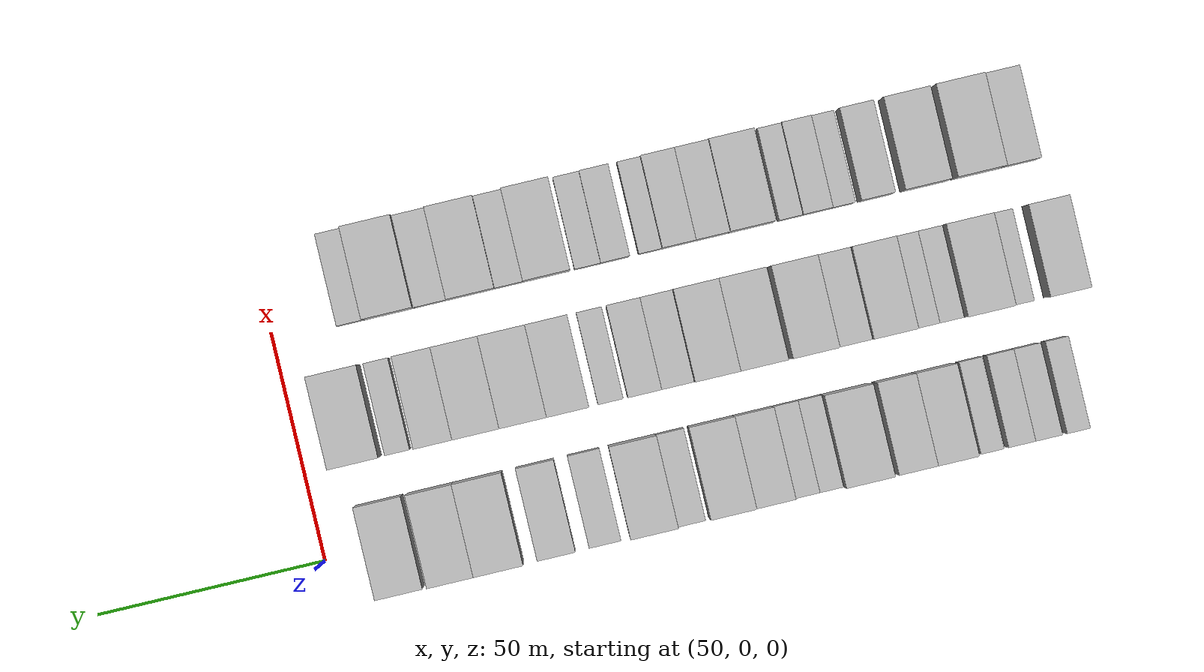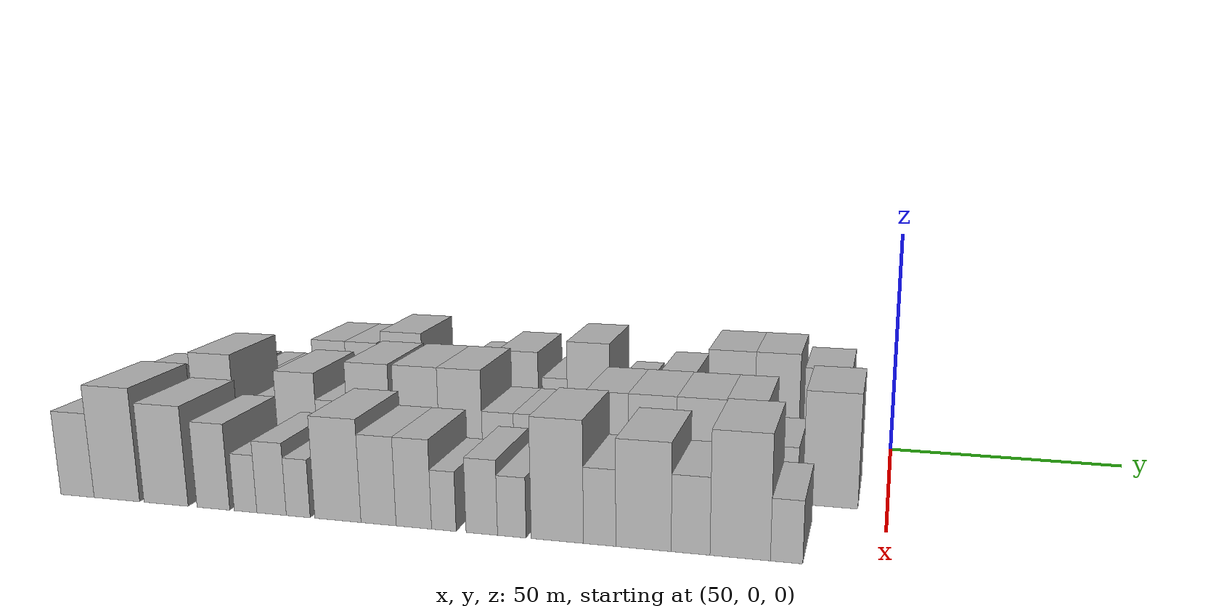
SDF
<sdf version="1.6">
 <world name="default">
  <model name="building_20">
   <static>1</static>
   <pose>50.0000 -161.9651 0 0.000000 0.000000 0.000000</pose>
   <link name="link">
    <pose>0 0 6.00 0 0 0</pose>
    <collision name="collision"><geometry><box><size>20.0000 5.0303 12.0000</size></box></geometry></collision>
    <visual name="visual">
     <cast_shadows>0</cast_shadows>
     <geometry><box><size>20.0000 5.0303 12.0000</size></box></geometry>
     <material>
      <script>
       <uri>model://HANNAS_wall/materials/scripts</uri>
       <uri>model://HANNAS_wall/materials/textures</uri>
       <name>vrc/HANNAS_wall</name>
      </script>
     </material>
    </visual>
   </link>
  </model>
  <model name="building_21">
   <static>1</static>
   <pose>50.0000 -155.5312 0 0.000000 0.000000 0.000000</pose>
   <link name="link">
    <pose>0 0 6.00 0 0 0</pose>
    <collision name="collision"><geometry><box><size>20.0000 5.8376 12.0000</size></box></geometry></collision>
    <visual name="visual">
     <cast_shadows>0</cast_shadows>
     <geometry><box><size>20.0000 5.8376 12.0000</size></box></geometry>
     <material>
      <script>
       <uri>model://HANNAS_wall/materials/scripts</uri>
       <uri>model://HANNAS_wall/materials/textures</uri>
       <name>vrc/HANNAS_wall</name>
      </script>
     </material>
    </visual>
   </link>
  </model>
  <model name="building_22">
   <static>1</static>
   <pose>50.0000 -149.6704 0 0.000000 0.000000 0.000000</pose>
   <link name="link">
    <pose>0 0 6.00 0 0 0</pose>
    <collision name="collision"><geometry><box><size>20.0000 5.8840 12.0000</size></box></geometry></collision>
    <visual name="visual">
     <cast_shadows>0</cast_shadows>
     <geometry><box><size>20.0000 5.8840 12.0000</size></box></geometry>
     <material>
      <script>
       <uri>model://HANNAS_wall/materials/scripts</uri>
       <uri>model://HANNAS_wall/materials/textures</uri>
       <name>vrc/HANNAS_wall</name>
      </script>
     </material>
    </visual>
   </link>
  </model>
  <model name="building_23">
   <static>1</static>
   <pose>50.0000 -143.2097 0 0.000000 0.000000 0.000000</pose>
   <link name="link">
    <pose>0 0 6.00 0 0 0</pose>
    <collision name="collision"><geometry><box><size>20.0000 5.0373 12.0000</size></box></geometry></collision>
    <visual name="visual">
     <cast_shadows>0</cast_shadows>
     <geometry><box><size>20.0000 5.0373 12.0000</size></box></geometry>
     <material>
      <script>
       <uri>model://HANNAS_wall/materials/scripts</uri>
       <uri>model://HANNAS_wall/materials/textures</uri>
       <name>vrc/HANNAS_wall</name>
      </script>
     </material>
    </visual>
   </link>
  </model>
  <model name="building_24">
   <static>1</static>
   <pose>50.0000 -135.2551 0 0.000000 0.000000 0.000000</pose>
   <link name="link">
    <pose>0 0 10.50 0 0 0</pose>
    <collision name="collision"><geometry><box><size>20.0000 8.8719 21.0000</size></box></geometry></collision>
    <visual name="visual">
     <cast_shadows>0</cast_shadows>
     <geometry><box><size>20.0000 8.8719 21.0000</size></box></geometry>
     <material>
      <script>
       <uri>model://HANNAS_wall/materials/scripts</uri>
       <uri>model://HANNAS_wall/materials/textures</uri>
       <name>vrc/HANNAS_wall</name>
      </script>
     </material>
    </visual>
   </link>
  </model>
  <model name="building_25">
   <static>1</static>
   <pose>50.0000 -126.5977 0 0.000000 0.000000 0.000000</pose>
   <link name="link">
    <pose>0 0 10.50 0 0 0</pose>
    <collision name="collision"><geometry><box><size>20.0000 8.4429 21.0000</size></box></geometry></collision>
    <visual name="visual">
     <cast_shadows>0</cast_shadows>
     <geometry><box><size>20.0000 8.4429 21.0000</size></box></geometry>
     <material>
      <script>
       <uri>model://HANNAS_wall/materials/scripts</uri>
       <uri>model://HANNAS_wall/materials/textures</uri>
       <name>vrc/HANNAS_wall</name>
      </script>
     </material>
    </visual>
   </link>
  </model>
  <model name="building_26">
   <static>1</static>
   <pose>50.0000 -116.0989 0 0.000000 0.000000 0.000000</pose>
   <link name="link">
    <pose>0 0 12.00 0 0 0</pose>
    <collision name="collision"><geometry><box><size>20.0000 10.5547 24.0000</size></box></geometry></collision>
    <visual name="visual">
     <cast_shadows>0</cast_shadows>
     <geometry><box><size>20.0000 10.5547 24.0000</size></box></geometry>
     <material>
      <script>
       <uri>model://HANNAS_wall/materials/scripts</uri>
       <uri>model://HANNAS_wall/materials/textures</uri>
       <name>vrc/HANNAS_wall</name>
      </script>
     </material>
    </visual>
   </link>
  </model>
  <model name="building_27">
   <static>1</static>
   <pose>50.0000 -108.2517 0 0.000000 0.000000 0.000000</pose>
   <link name="link">
    <pose>0 0 6.00 0 0 0</pose>
    <collision name="collision"><geometry><box><size>20.0000 5.1396 12.0000</size></box></geometry></collision>
    <visual name="visual">
     <cast_shadows>0</cast_shadows>
     <geometry><box><size>20.0000 5.1396 12.0000</size></box></geometry>
     <material>
      <script>
       <uri>model://HANNAS_wall/materials/scripts</uri>
       <uri>model://HANNAS_wall/materials/textures</uri>
       <name>vrc/HANNAS_wall</name>
      </script>
     </material>
    </visual>
   </link>
  </model>
  <model name="building_28">
   <static>1</static>
   <pose>50.0000 -102.9619 0 0.000000 0.000000 0.000000</pose>
   <link name="link">
    <pose>0 0 6.00 0 0 0</pose>
    <collision name="collision"><geometry><box><size>20.0000 5.4400 12.0000</size></box></geometry></collision>
    <visual name="visual">
     <cast_shadows>0</cast_shadows>
     <geometry><box><size>20.0000 5.4400 12.0000</size></box></geometry>
     <material>
      <script>
       <uri>model://HANNAS_wall/materials/scripts</uri>
       <uri>model://HANNAS_wall/materials/textures</uri>
       <name>vrc/HANNAS_wall</name>
      </script>
     </material>
    </visual>
   </link>
  </model>
  <model name="building_29">
   <static>1</static>
   <pose>50.0000 -95.9530 0 0.000000 0.000000 0.000000</pose>
   <link name="link">
    <pose>0 0 9.00 0 0 0</pose>
    <collision name="collision"><geometry><box><size>20.0000 8.5779 18.0000</size></box></geometry></collision>
    <visual name="visual">
     <cast_shadows>0</cast_shadows>
     <geometry><box><size>20.0000 8.5779 18.0000</size></box></geometry>
     <material>
      <script>
       <uri>model://HANNAS_wall/materials/scripts</uri>
       <uri>model://HANNAS_wall/materials/textures</uri>
       <name>vrc/HANNAS_wall</name>
      </script>
     </material>
    </visual>
   </link>
  </model>
  <model name="building_30">
   <static>1</static>
   <pose>50.0000 -86.7007 0 0.000000 0.000000 0.000000</pose>
   <link name="link">
    <pose>0 0 10.50 0 0 0</pose>
    <collision name="collision"><geometry><box><size>20.0000 9.9268 21.0000</size></box></geometry></collision>
    <visual name="visual">
     <cast_shadows>0</cast_shadows>
     <geometry><box><size>20.0000 9.9268 21.0000</size></box></geometry>
     <material>
      <script>
       <uri>model://HANNAS_wall/materials/scripts</uri>
       <uri>model://HANNAS_wall/materials/textures</uri>
       <name>vrc/HANNAS_wall</name>
      </script>
     </material>
    </visual>
   </link>
  </model>
  <model name="building_31">
   <static>1</static>
   <pose>50.0000 -77.7047 0 0.000000 0.000000 0.000000</pose>
   <link name="link">
    <pose>0 0 7.50 0 0 0</pose>
    <collision name="collision"><geometry><box><size>20.0000 6.0651 15.0000</size></box></geometry></collision>
    <visual name="visual">
     <cast_shadows>0</cast_shadows>
     <geometry><box><size>20.0000 6.0651 15.0000</size></box></geometry>
     <material>
      <script>
       <uri>model://HANNAS_wall/materials/scripts</uri>
       <uri>model://HANNAS_wall/materials/textures</uri>
       <name>vrc/HANNAS_wall</name>
      </script>
     </material>
    </visual>
   </link>
  </model>
  <model name="building_32">
   <static>1</static>
   <pose>50.0000 -69.5270 0 0.000000 0.000000 0.000000</pose>
   <link name="link">
    <pose>0 0 12.00 0 0 0</pose>
    <collision name="collision"><geometry><box><size>20.0000 10.2904 24.0000</size></box></geometry></collision>
    <visual name="visual">
     <cast_shadows>0</cast_shadows>
     <geometry><box><size>20.0000 10.2904 24.0000</size></box></geometry>
     <material>
      <script>
       <uri>model://HANNAS_wall/materials/scripts</uri>
       <uri>model://HANNAS_wall/materials/textures</uri>
       <name>vrc/HANNAS_wall</name>
      </script>
     </material>
    </visual>
   </link>
  </model>
  <model name="building_33">
   <static>1</static>
   <pose>50.0000 -58.9242 0 0.000000 0.000000 0.000000</pose>
   <link name="link">
    <pose>0 0 7.50 0 0 0</pose>
    <collision name="collision"><geometry><box><size>20.0000 6.9151 15.0000</size></box></geometry></collision>
    <visual name="visual">
     <cast_shadows>0</cast_shadows>
     <geometry><box><size>20.0000 6.9151 15.0000</size></box></geometry>
     <material>
      <script>
       <uri>model://HANNAS_wall/materials/scripts</uri>
       <uri>model://HANNAS_wall/materials/textures</uri>
       <name>vrc/HANNAS_wall</name>
      </script>
     </material>
    </visual>
   </link>
  </model>
  <model name="building_34">
   <static>1</static>
   <pose>50.0000 -48.3323 0 0.000000 0.000000 0.000000</pose>
   <link name="link">
    <pose>0 0 9.00 0 0 0</pose>
    <collision name="collision"><geometry><box><size>20.0000 8.2686 18.0000</size></box></geometry></collision>
    <visual name="visual">
     <cast_shadows>0</cast_shadows>
     <geometry><box><size>20.0000 8.2686 18.0000</size></box></geometry>
     <material>
      <script>
       <uri>model://HANNAS_wall/materials/scripts</uri>
       <uri>model://HANNAS_wall/materials/textures</uri>
       <name>vrc/HANNAS_wall</name>
      </script>
     </material>
    </visual>
   </link>
  </model>
  <model name="building_35">
   <static>1</static>
   <pose>50.0000 -35.8312 0 0.000000 0.000000 0.000000</pose>
   <link name="link">
    <pose>0 0 12.00 0 0 0</pose>
    <collision name="collision"><geometry><box><size>20.0000 10.7336 24.0000</size></box></geometry></collision>
    <visual name="visual">
     <cast_shadows>0</cast_shadows>
     <geometry><box><size>20.0000 10.7336 24.0000</size></box></geometry>
     <material>
      <script>
       <uri>model://HANNAS_wall/materials/scripts</uri>
       <uri>model://HANNAS_wall/materials/textures</uri>
       <name>vrc/HANNAS_wall</name>
      </script>
     </material>
    </visual>
   </link>
  </model>
  <model name="building_36">
   <static>1</static>
   <pose>50.0000 -25.4489 0 0.000000 0.000000 0.000000</pose>
   <link name="link">
    <pose>0 0 12.00 0 0 0</pose>
    <collision name="collision"><geometry><box><size>20.0000 10.0312 24.0000</size></box></geometry></collision>
    <visual name="visual">
     <cast_shadows>0</cast_shadows>
     <geometry><box><size>20.0000 10.0312 24.0000</size></box></geometry>
     <material>
      <script>
       <uri>model://HANNAS_wall/materials/scripts</uri>
       <uri>model://HANNAS_wall/materials/textures</uri>
       <name>vrc/HANNAS_wall</name>
      </script>
     </material>
    </visual>
   </link>
  </model>
  <model name="building_37">
   <static>1</static>
   <pose>50.0000 -14.2747 0 0.000000 0.000000 0.000000</pose>
   <link name="link">
    <pose>0 0 10.50 0 0 0</pose>
    <collision name="collision"><geometry><box><size>20.0000 10.3172 21.0000</size></box></geometry></collision>
    <visual name="visual">
     <cast_shadows>0</cast_shadows>
     <geometry><box><size>20.0000 10.3172 21.0000</size></box></geometry>
     <material>
      <script>
       <uri>model://HANNAS_wall/materials/scripts</uri>
       <uri>model://HANNAS_wall/materials/textures</uri>
       <name>vrc/HANNAS_wall</name>
      </script>
     </material>
    </visual>
   </link>
  </model>
  <model name="building_92">
   <static>1</static>
   <pose>79.0000 -166.6821 0 0.000000 0.000000 0.000000</pose>
   <link name="link">
    <pose>0 0 9.00 0 0 0</pose>
    <collision name="collision"><geometry><box><size>20.0000 8.9285 18.0000</size></box></geometry></collision>
    <visual name="visual">
     <cast_shadows>0</cast_shadows>
     <geometry><box><size>20.0000 8.9285 18.0000</size></box></geometry>
     <material>
      <script>
       <uri>model://HANNAS_wall/materials/scripts</uri>
       <uri>model://HANNAS_wall/materials/textures</uri>
       <name>vrc/HANNAS_wall</name>
      </script>
     </material>
    </visual>
   </link>
  </model>
  <model name="building_93">
   <static>1</static>
   <pose>79.0000 -156.7479 0 0.000000 0.000000 0.000000</pose>
   <link name="link">
    <pose>0 0 6.00 0 0 0</pose>
    <collision name="collision"><geometry><box><size>20.0000 4.9399 12.0000</size></box></geometry></collision>
    <visual name="visual">
     <cast_shadows>0</cast_shadows>
     <geometry><box><size>20.0000 4.9399 12.0000</size></box></geometry>
     <material>
      <script>
       <uri>model://HANNAS_wall/materials/scripts</uri>
       <uri>model://HANNAS_wall/materials/textures</uri>
       <name>vrc/HANNAS_wall</name>
      </script>
     </material>
    </visual>
   </link>
  </model>
  <model name="building_94">
   <static>1</static>
   <pose>79.0000 -149.1250 0 0.000000 0.000000 0.000000</pose>
   <link name="link">
    <pose>0 0 12.00 0 0 0</pose>
    <collision name="collision"><geometry><box><size>20.0000 10.3059 24.0000</size></box></geometry></collision>
    <visual name="visual">
     <cast_shadows>0</cast_shadows>
     <geometry><box><size>20.0000 10.3059 24.0000</size></box></geometry>
     <material>
      <script>
       <uri>model://HANNAS_wall/materials/scripts</uri>
       <uri>model://HANNAS_wall/materials/textures</uri>
       <name>vrc/HANNAS_wall</name>
      </script>
     </material>
    </visual>
   </link>
  </model>
  <model name="building_95">
   <static>1</static>
   <pose>79.0000 -141.3375 0 0.000000 0.000000 0.000000</pose>
   <link name="link">
    <pose>0 0 6.00 0 0 0</pose>
    <collision name="collision"><geometry><box><size>20.0000 5.2692 12.0000</size></box></geometry></collision>
    <visual name="visual">
     <cast_shadows>0</cast_shadows>
     <geometry><box><size>20.0000 5.2692 12.0000</size></box></geometry>
     <material>
      <script>
       <uri>model://HANNAS_wall/materials/scripts</uri>
       <uri>model://HANNAS_wall/materials/textures</uri>
       <name>vrc/HANNAS_wall</name>
      </script>
     </material>
    </visual>
   </link>
  </model>
  <model name="building_96">
   <static>1</static>
   <pose>79.0000 -136.0979 0 0.000000 0.000000 0.000000</pose>
   <link name="link">
    <pose>0 0 6.00 0 0 0</pose>
    <collision name="collision"><geometry><box><size>20.0000 5.2100 12.0000</size></box></geometry></collision>
    <visual name="visual">
     <cast_shadows>0</cast_shadows>
     <geometry><box><size>20.0000 5.2100 12.0000</size></box></geometry>
     <material>
      <script>
       <uri>model://HANNAS_wall/materials/scripts</uri>
       <uri>model://HANNAS_wall/materials/textures</uri>
       <name>vrc/HANNAS_wall</name>
      </script>
     </material>
    </visual>
   </link>
  </model>
  <model name="building_97">
   <static>1</static>
   <pose>79.0000 -128.6765 0 0.000000 0.000000 0.000000</pose>
   <link name="link">
    <pose>0 0 10.50 0 0 0</pose>
    <collision name="collision"><geometry><box><size>20.0000 9.6329 21.0000</size></box></geometry></collision>
    <visual name="visual">
     <cast_shadows>0</cast_shadows>
     <geometry><box><size>20.0000 9.6329 21.0000</size></box></geometry>
     <material>
      <script>
       <uri>model://HANNAS_wall/materials/scripts</uri>
       <uri>model://HANNAS_wall/materials/textures</uri>
       <name>vrc/HANNAS_wall</name>
      </script>
     </material>
    </visual>
   </link>
  </model>
  <model name="building_98">
   <static>1</static>
   <pose>79.0000 -120.1163 0 0.000000 0.000000 0.000000</pose>
   <link name="link">
    <pose>0 0 7.50 0 0 0</pose>
    <collision name="collision"><geometry><box><size>20.0000 7.4874 15.0000</size></box></geometry></collision>
    <visual name="visual">
     <cast_shadows>0</cast_shadows>
     <geometry><box><size>20.0000 7.4874 15.0000</size></box></geometry>
     <material>
      <script>
       <uri>model://HANNAS_wall/materials/scripts</uri>
       <uri>model://HANNAS_wall/materials/textures</uri>
       <name>vrc/HANNAS_wall</name>
      </script>
     </material>
    </visual>
   </link>
  </model>
  <model name="building_99">
   <static>1</static>
   <pose>79.0000 -111.3327 0 0.000000 0.000000 0.000000</pose>
   <link name="link">
    <pose>0 0 12.00 0 0 0</pose>
    <collision name="collision"><geometry><box><size>20.0000 10.0798 24.0000</size></box></geometry></collision>
    <visual name="visual">
     <cast_shadows>0</cast_shadows>
     <geometry><box><size>20.0000 10.0798 24.0000</size></box></geometry>
     <material>
      <script>
       <uri>model://HANNAS_wall/materials/scripts</uri>
       <uri>model://HANNAS_wall/materials/textures</uri>
       <name>vrc/HANNAS_wall</name>
      </script>
     </material>
    </visual>
   </link>
  </model>
  <model name="building_100">
   <static>1</static>
   <pose>79.0000 -100.1573 0 0.000000 0.000000 0.000000</pose>
   <link name="link">
    <pose>0 0 12.00 0 0 0</pose>
    <collision name="collision"><geometry><box><size>20.0000 10.2710 24.0000</size></box></geometry></collision>
    <visual name="visual">
     <cast_shadows>0</cast_shadows>
     <geometry><box><size>20.0000 10.2710 24.0000</size></box></geometry>
     <material>
      <script>
       <uri>model://HANNAS_wall/materials/scripts</uri>
       <uri>model://HANNAS_wall/materials/textures</uri>
       <name>vrc/HANNAS_wall</name>
      </script>
     </material>
    </visual>
   </link>
  </model>
  <model name="building_101">
   <static>1</static>
   <pose>79.0000 -90.1085 0 0.000000 0.000000 0.000000</pose>
   <link name="link">
    <pose>0 0 12.00 0 0 0</pose>
    <collision name="collision"><geometry><box><size>20.0000 9.8265 24.0000</size></box></geometry></collision>
    <visual name="visual">
     <cast_shadows>0</cast_shadows>
     <geometry><box><size>20.0000 9.8265 24.0000</size></box></geometry>
     <material>
      <script>
       <uri>model://HANNAS_wall/materials/scripts</uri>
       <uri>model://HANNAS_wall/materials/textures</uri>
       <name>vrc/HANNAS_wall</name>
      </script>
     </material>
    </visual>
   </link>
  </model>
  <model name="building_102">
   <static>1</static>
   <pose>79.0000 -81.6660 0 0.000000 0.000000 0.000000</pose>
   <link name="link">
    <pose>0 0 7.50 0 0 0</pose>
    <collision name="collision"><geometry><box><size>20.0000 7.0586 15.0000</size></box></geometry></collision>
    <visual name="visual">
     <cast_shadows>0</cast_shadows>
     <geometry><box><size>20.0000 7.0586 15.0000</size></box></geometry>
     <material>
      <script>
       <uri>model://HANNAS_wall/materials/scripts</uri>
       <uri>model://HANNAS_wall/materials/textures</uri>
       <name>vrc/HANNAS_wall</name>
      </script>
     </material>
    </visual>
   </link>
  </model>
  <model name="building_103">
   <static>1</static>
   <pose>79.0000 -74.4767 0 0.000000 0.000000 0.000000</pose>
   <link name="link">
    <pose>0 0 7.50 0 0 0</pose>
    <collision name="collision"><geometry><box><size>20.0000 7.3200 15.0000</size></box></geometry></collision>
    <visual name="visual">
     <cast_shadows>0</cast_shadows>
     <geometry><box><size>20.0000 7.3200 15.0000</size></box></geometry>
     <material>
      <script>
       <uri>model://HANNAS_wall/materials/scripts</uri>
       <uri>model://HANNAS_wall/materials/textures</uri>
       <name>vrc/HANNAS_wall</name>
      </script>
     </material>
    </visual>
   </link>
  </model>
  <model name="building_104">
   <static>1</static>
   <pose>79.0000 -67.0640 0 0.000000 0.000000 0.000000</pose>
   <link name="link">
    <pose>0 0 6.00 0 0 0</pose>
    <collision name="collision"><geometry><box><size>20.0000 5.5054 12.0000</size></box></geometry></collision>
    <visual name="visual">
     <cast_shadows>0</cast_shadows>
     <geometry><box><size>20.0000 5.5054 12.0000</size></box></geometry>
     <material>
      <script>
       <uri>model://HANNAS_wall/materials/scripts</uri>
       <uri>model://HANNAS_wall/materials/textures</uri>
       <name>vrc/HANNAS_wall</name>
      </script>
     </material>
    </visual>
   </link>
  </model>
  <model name="building_105">
   <static>1</static>
   <pose>79.0000 -57.7347 0 0.000000 0.000000 0.000000</pose>
   <link name="link">
    <pose>0 0 10.50 0 0 0</pose>
    <collision name="collision"><geometry><box><size>20.0000 9.1532 21.0000</size></box></geometry></collision>
    <visual name="visual">
     <cast_shadows>0</cast_shadows>
     <geometry><box><size>20.0000 9.1532 21.0000</size></box></geometry>
     <material>
      <script>
       <uri>model://HANNAS_wall/materials/scripts</uri>
       <uri>model://HANNAS_wall/materials/textures</uri>
       <name>vrc/HANNAS_wall</name>
      </script>
     </material>
    </visual>
   </link>
  </model>
  <model name="building_106">
   <static>1</static>
   <pose>79.0000 -48.0310 0 0.000000 0.000000 0.000000</pose>
   <link name="link">
    <pose>0 0 10.50 0 0 0</pose>
    <collision name="collision"><geometry><box><size>20.0000 10.2543 21.0000</size></box></geometry></collision>
    <visual name="visual">
     <cast_shadows>0</cast_shadows>
     <geometry><box><size>20.0000 10.2543 21.0000</size></box></geometry>
     <material>
      <script>
       <uri>model://HANNAS_wall/materials/scripts</uri>
       <uri>model://HANNAS_wall/materials/textures</uri>
       <name>vrc/HANNAS_wall</name>
      </script>
     </material>
    </visual>
   </link>
  </model>
  <model name="building_107">
   <static>1</static>
   <pose>79.0000 -37.8188 0 0.000000 0.000000 0.000000</pose>
   <link name="link">
    <pose>0 0 10.50 0 0 0</pose>
    <collision name="collision"><geometry><box><size>20.0000 10.1700 21.0000</size></box></geometry></collision>
    <visual name="visual">
     <cast_shadows>0</cast_shadows>
     <geometry><box><size>20.0000 10.1700 21.0000</size></box></geometry>
     <material>
      <script>
       <uri>model://HANNAS_wall/materials/scripts</uri>
       <uri>model://HANNAS_wall/materials/textures</uri>
       <name>vrc/HANNAS_wall</name>
      </script>
     </material>
    </visual>
   </link>
  </model>
  <model name="building_108">
   <static>1</static>
   <pose>79.0000 -28.5317 0 0.000000 0.000000 0.000000</pose>
   <link name="link">
    <pose>0 0 10.50 0 0 0</pose>
    <collision name="collision"><geometry><box><size>20.0000 8.4044 21.0000</size></box></geometry></collision>
    <visual name="visual">
     <cast_shadows>0</cast_shadows>
     <geometry><box><size>20.0000 8.4044 21.0000</size></box></geometry>
     <material>
      <script>
       <uri>model://HANNAS_wall/materials/scripts</uri>
       <uri>model://HANNAS_wall/materials/textures</uri>
       <name>vrc/HANNAS_wall</name>
      </script>
     </material>
    </visual>
   </link>
  </model>
  <model name="building_109">
   <static>1</static>
   <pose>79.0000 -20.6096 0 0.000000 0.000000 0.000000</pose>
   <link name="link">
    <pose>0 0 6.00 0 0 0</pose>
    <collision name="collision"><geometry><box><size>20.0000 5.4398 12.0000</size></box></geometry></collision>
    <visual name="visual">
     <cast_shadows>0</cast_shadows>
     <geometry><box><size>20.0000 5.4398 12.0000</size></box></geometry>
     <material>
      <script>
       <uri>model://HANNAS_wall/materials/scripts</uri>
       <uri>model://HANNAS_wall/materials/textures</uri>
       <name>vrc/HANNAS_wall</name>
      </script>
     </material>
    </visual>
   </link>
  </model>
  <model name="building_110">
   <static>1</static>
   <pose>79.0000 -11.3676 0 0.000000 0.000000 0.000000</pose>
   <link name="link">
    <pose>0 0 12.00 0 0 0</pose>
    <collision name="collision"><geometry><box><size>20.0000 11.0440 24.0000</size></box></geometry></collision>
    <visual name="visual">
     <cast_shadows>0</cast_shadows>
     <geometry><box><size>20.0000 11.0440 24.0000</size></box></geometry>
     <material>
      <script>
       <uri>model://HANNAS_wall/materials/scripts</uri>
       <uri>model://HANNAS_wall/materials/textures</uri>
       <name>vrc/HANNAS_wall</name>
      </script>
     </material>
    </visual>
   </link>
  </model>
  <model name="building_163">
   <static>1</static>
   <pose>108.0000 -163.2572 0 0.000000 0.000000 0.000000</pose>
   <link name="link">
    <pose>0 0 9.00 0 0 0</pose>
    <collision name="collision"><geometry><box><size>20.0000 7.8791 18.0000</size></box></geometry></collision>
    <visual name="visual">
     <cast_shadows>0</cast_shadows>
     <geometry><box><size>20.0000 7.8791 18.0000</size></box></geometry>
     <material>
      <script>
       <uri>model://HANNAS_wall/materials/scripts</uri>
       <uri>model://HANNAS_wall/materials/textures</uri>
       <name>vrc/HANNAS_wall</name>
      </script>
     </material>
    </visual>
   </link>
  </model>
  <model name="building_164">
   <static>1</static>
   <pose>108.0000 -154.0103 0 0.000000 0.000000 0.000000</pose>
   <link name="link">
    <pose>0 0 12.00 0 0 0</pose>
    <collision name="collision"><geometry><box><size>20.0000 10.6147 24.0000</size></box></geometry></collision>
    <visual name="visual">
     <cast_shadows>0</cast_shadows>
     <geometry><box><size>20.0000 10.6147 24.0000</size></box></geometry>
     <material>
      <script>
       <uri>model://HANNAS_wall/materials/scripts</uri>
       <uri>model://HANNAS_wall/materials/textures</uri>
       <name>vrc/HANNAS_wall</name>
      </script>
     </material>
    </visual>
   </link>
  </model>
  <model name="building_165">
   <static>1</static>
   <pose>108.0000 -142.6476 0 0.000000 0.000000 0.000000</pose>
   <link name="link">
    <pose>0 0 10.50 0 0 0</pose>
    <collision name="collision"><geometry><box><size>20.0000 10.1106 21.0000</size></box></geometry></collision>
    <visual name="visual">
     <cast_shadows>0</cast_shadows>
     <geometry><box><size>20.0000 10.1106 21.0000</size></box></geometry>
     <material>
      <script>
       <uri>model://HANNAS_wall/materials/scripts</uri>
       <uri>model://HANNAS_wall/materials/textures</uri>
       <name>vrc/HANNAS_wall</name>
      </script>
     </material>
    </visual>
   </link>
  </model>
  <model name="building_166">
   <static>1</static>
   <pose>108.0000 -131.9261 0 0.000000 0.000000 0.000000</pose>
   <link name="link">
    <pose>0 0 9.00 0 0 0</pose>
    <collision name="collision"><geometry><box><size>20.0000 7.3326 18.0000</size></box></geometry></collision>
    <visual name="visual">
     <cast_shadows>0</cast_shadows>
     <geometry><box><size>20.0000 7.3326 18.0000</size></box></geometry>
     <material>
      <script>
       <uri>model://HANNAS_wall/materials/scripts</uri>
       <uri>model://HANNAS_wall/materials/textures</uri>
       <name>vrc/HANNAS_wall</name>
      </script>
     </material>
    </visual>
   </link>
  </model>
  <model name="building_167">
   <static>1</static>
   <pose>108.0000 -124.7617 0 0.000000 0.000000 0.000000</pose>
   <link name="link">
    <pose>0 0 6.00 0 0 0</pose>
    <collision name="collision"><geometry><box><size>20.0000 4.9962 12.0000</size></box></geometry></collision>
    <visual name="visual">
     <cast_shadows>0</cast_shadows>
     <geometry><box><size>20.0000 4.9962 12.0000</size></box></geometry>
     <material>
      <script>
       <uri>model://HANNAS_wall/materials/scripts</uri>
       <uri>model://HANNAS_wall/materials/textures</uri>
       <name>vrc/HANNAS_wall</name>
      </script>
     </material>
    </visual>
   </link>
  </model>
  <model name="building_168">
   <static>1</static>
   <pose>108.0000 -119.0453 0 0.000000 0.000000 0.000000</pose>
   <link name="link">
    <pose>0 0 7.50 0 0 0</pose>
    <collision name="collision"><geometry><box><size>20.0000 6.4365 15.0000</size></box></geometry></collision>
    <visual name="visual">
     <cast_shadows>0</cast_shadows>
     <geometry><box><size>20.0000 6.4365 15.0000</size></box></geometry>
     <material>
      <script>
       <uri>model://HANNAS_wall/materials/scripts</uri>
       <uri>model://HANNAS_wall/materials/textures</uri>
       <name>vrc/HANNAS_wall</name>
      </script>
     </material>
    </visual>
   </link>
  </model>
  <model name="building_169">
   <static>1</static>
   <pose>108.0000 -113.2398 0 0.000000 0.000000 0.000000</pose>
   <link name="link">
    <pose>0 0 6.00 0 0 0</pose>
    <collision name="collision"><geometry><box><size>20.0000 5.1745 12.0000</size></box></geometry></collision>
    <visual name="visual">
     <cast_shadows>0</cast_shadows>
     <geometry><box><size>20.0000 5.1745 12.0000</size></box></geometry>
     <material>
      <script>
       <uri>model://HANNAS_wall/materials/scripts</uri>
       <uri>model://HANNAS_wall/materials/textures</uri>
       <name>vrc/HANNAS_wall</name>
      </script>
     </material>
    </visual>
   </link>
  </model>
  <model name="building_170">
   <static>1</static>
   <pose>108.0000 -104.7421 0 0.000000 0.000000 0.000000</pose>
   <link name="link">
    <pose>0 0 10.50 0 0 0</pose>
    <collision name="collision"><geometry><box><size>20.0000 9.8209 21.0000</size></box></geometry></collision>
    <visual name="visual">
     <cast_shadows>0</cast_shadows>
     <geometry><box><size>20.0000 9.8209 21.0000</size></box></geometry>
     <material>
      <script>
       <uri>model://HANNAS_wall/materials/scripts</uri>
       <uri>model://HANNAS_wall/materials/textures</uri>
       <name>vrc/HANNAS_wall</name>
      </script>
     </material>
    </visual>
   </link>
  </model>
  <model name="building_171">
   <static>1</static>
   <pose>108.0000 -96.1508 0 0.000000 0.000000 0.000000</pose>
   <link name="link">
    <pose>0 0 9.00 0 0 0</pose>
    <collision name="collision"><geometry><box><size>20.0000 7.3617 18.0000</size></box></geometry></collision>
    <visual name="visual">
     <cast_shadows>0</cast_shadows>
     <geometry><box><size>20.0000 7.3617 18.0000</size></box></geometry>
     <material>
      <script>
       <uri>model://HANNAS_wall/materials/scripts</uri>
       <uri>model://HANNAS_wall/materials/textures</uri>
       <name>vrc/HANNAS_wall</name>
      </script>
     </material>
    </visual>
   </link>
  </model>
  <model name="building_172">
   <static>1</static>
   <pose>108.0000 -88.8111 0 0.000000 0.000000 0.000000</pose>
   <link name="link">
    <pose>0 0 9.00 0 0 0</pose>
    <collision name="collision"><geometry><box><size>20.0000 7.3175 18.0000</size></box></geometry></collision>
    <visual name="visual">
     <cast_shadows>0</cast_shadows>
     <geometry><box><size>20.0000 7.3175 18.0000</size></box></geometry>
     <material>
      <script>
       <uri>model://HANNAS_wall/materials/scripts</uri>
       <uri>model://HANNAS_wall/materials/textures</uri>
       <name>vrc/HANNAS_wall</name>
      </script>
     </material>
    </visual>
   </link>
  </model>
  <model name="building_173">
   <static>1</static>
   <pose>108.0000 -82.6396 0 0.000000 0.000000 0.000000</pose>
   <link name="link">
    <pose>0 0 6.00 0 0 0</pose>
    <collision name="collision"><geometry><box><size>20.0000 5.0255 12.0000</size></box></geometry></collision>
    <visual name="visual">
     <cast_shadows>0</cast_shadows>
     <geometry><box><size>20.0000 5.0255 12.0000</size></box></geometry>
     <material>
      <script>
       <uri>model://HANNAS_wall/materials/scripts</uri>
       <uri>model://HANNAS_wall/materials/textures</uri>
       <name>vrc/HANNAS_wall</name>
      </script>
     </material>
    </visual>
   </link>
  </model>
  <model name="building_174">
   <static>1</static>
   <pose>108.0000 -74.9684 0 0.000000 0.000000 0.000000</pose>
   <link name="link">
    <pose>0 0 7.50 0 0 0</pose>
    <collision name="collision"><geometry><box><size>20.0000 6.3171 15.0000</size></box></geometry></collision>
    <visual name="visual">
     <cast_shadows>0</cast_shadows>
     <geometry><box><size>20.0000 6.3171 15.0000</size></box></geometry>
     <material>
      <script>
       <uri>model://HANNAS_wall/materials/scripts</uri>
       <uri>model://HANNAS_wall/materials/textures</uri>
       <name>vrc/HANNAS_wall</name>
      </script>
     </material>
    </visual>
   </link>
  </model>
  <model name="building_175">
   <static>1</static>
   <pose>108.0000 -68.9609 0 0.000000 0.000000 0.000000</pose>
   <link name="link">
    <pose>0 0 6.00 0 0 0</pose>
    <collision name="collision"><geometry><box><size>20.0000 5.6979 12.0000</size></box></geometry></collision>
    <visual name="visual">
     <cast_shadows>0</cast_shadows>
     <geometry><box><size>20.0000 5.6979 12.0000</size></box></geometry>
     <material>
      <script>
       <uri>model://HANNAS_wall/materials/scripts</uri>
       <uri>model://HANNAS_wall/materials/textures</uri>
       <name>vrc/HANNAS_wall</name>
      </script>
     </material>
    </visual>
   </link>
  </model>
  <model name="building_176">
   <static>1</static>
   <pose>108.0000 -60.0193 0 0.000000 0.000000 0.000000</pose>
   <link name="link">
    <pose>0 0 12.00 0 0 0</pose>
    <collision name="collision"><geometry><box><size>20.0000 10.1853 24.0000</size></box></geometry></collision>
    <visual name="visual">
     <cast_shadows>0</cast_shadows>
     <geometry><box><size>20.0000 10.1853 24.0000</size></box></geometry>
     <material>
      <script>
       <uri>model://HANNAS_wall/materials/scripts</uri>
       <uri>model://HANNAS_wall/materials/textures</uri>
       <name>vrc/HANNAS_wall</name>
      </script>
     </material>
    </visual>
   </link>
  </model>
  <model name="building_177">
   <static>1</static>
   <pose>108.0000 -51.8318 0 0.000000 0.000000 0.000000</pose>
   <link name="link">
    <pose>0 0 7.50 0 0 0</pose>
    <collision name="collision"><geometry><box><size>20.0000 6.1897 15.0000</size></box></geometry></collision>
    <visual name="visual">
     <cast_shadows>0</cast_shadows>
     <geometry><box><size>20.0000 6.1897 15.0000</size></box></geometry>
     <material>
      <script>
       <uri>model://HANNAS_wall/materials/scripts</uri>
       <uri>model://HANNAS_wall/materials/textures</uri>
       <name>vrc/HANNAS_wall</name>
      </script>
     </material>
    </visual>
   </link>
  </model>
  <model name="building_178">
   <static>1</static>
   <pose>108.0000 -43.5092 0 0.000000 0.000000 0.000000</pose>
   <link name="link">
    <pose>0 0 10.50 0 0 0</pose>
    <collision name="collision"><geometry><box><size>20.0000 10.4555 21.0000</size></box></geometry></collision>
    <visual name="visual">
     <cast_shadows>0</cast_shadows>
     <geometry><box><size>20.0000 10.4555 21.0000</size></box></geometry>
     <material>
      <script>
       <uri>model://HANNAS_wall/materials/scripts</uri>
       <uri>model://HANNAS_wall/materials/textures</uri>
       <name>vrc/HANNAS_wall</name>
      </script>
     </material>
    </visual>
   </link>
  </model>
  <model name="building_179">
   <static>1</static>
   <pose>108.0000 -34.6858 0 0.000000 0.000000 0.000000</pose>
   <link name="link">
    <pose>0 0 7.50 0 0 0</pose>
    <collision name="collision"><geometry><box><size>20.0000 7.1914 15.0000</size></box></geometry></collision>
    <visual name="visual">
     <cast_shadows>0</cast_shadows>
     <geometry><box><size>20.0000 7.1914 15.0000</size></box></geometry>
     <material>
      <script>
       <uri>model://HANNAS_wall/materials/scripts</uri>
       <uri>model://HANNAS_wall/materials/textures</uri>
       <name>vrc/HANNAS_wall</name>
      </script>
     </material>
    </visual>
   </link>
  </model>
  <model name="building_180">
   <static>1</static>
   <pose>108.0000 -25.5938 0 0.000000 0.000000 0.000000</pose>
   <link name="link">
    <pose>0 0 12.00 0 0 0</pose>
    <collision name="collision"><geometry><box><size>20.0000 10.9926 24.0000</size></box></geometry></collision>
    <visual name="visual">
     <cast_shadows>0</cast_shadows>
     <geometry><box><size>20.0000 10.9926 24.0000</size></box></geometry>
     <material>
      <script>
       <uri>model://HANNAS_wall/materials/scripts</uri>
       <uri>model://HANNAS_wall/materials/textures</uri>
       <name>vrc/HANNAS_wall</name>
      </script>
     </material>
    </visual>
   </link>
  </model>
  <model name="building_181">
   <static>1</static>
   <pose>108.0000 -17.2026 0 0.000000 0.000000 0.000000</pose>
   <link name="link">
    <pose>0 0 6.00 0 0 0</pose>
    <collision name="collision"><geometry><box><size>20.0000 5.7899 12.0000</size></box></geometry></collision>
    <visual name="visual">
     <cast_shadows>0</cast_shadows>
     <geometry><box><size>20.0000 5.7899 12.0000</size></box></geometry>
     <material>
      <script>
       <uri>model://HANNAS_wall/materials/scripts</uri>
       <uri>model://HANNAS_wall/materials/textures</uri>
       <name>vrc/HANNAS_wall</name>
      </script>
     </material>
    </visual>
   </link>
  </model>
 </world>
</sdf>
